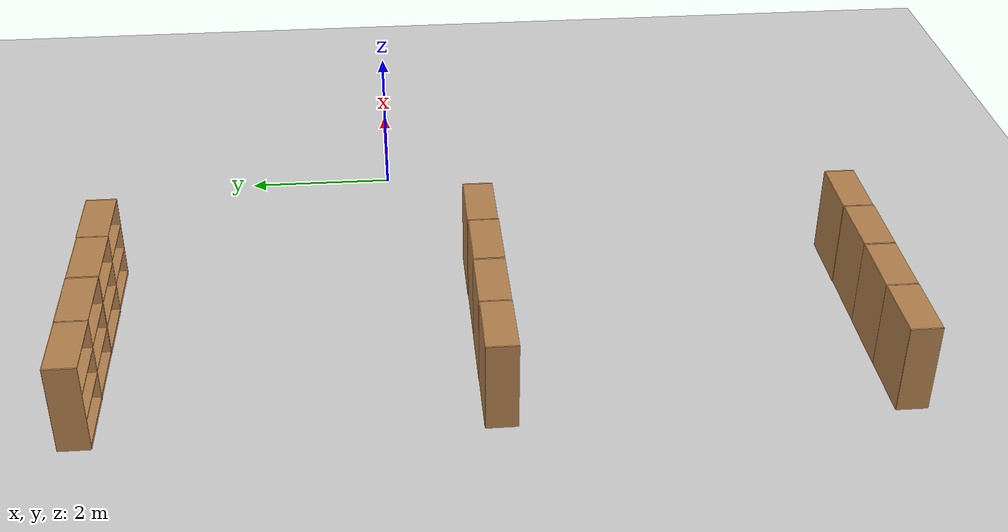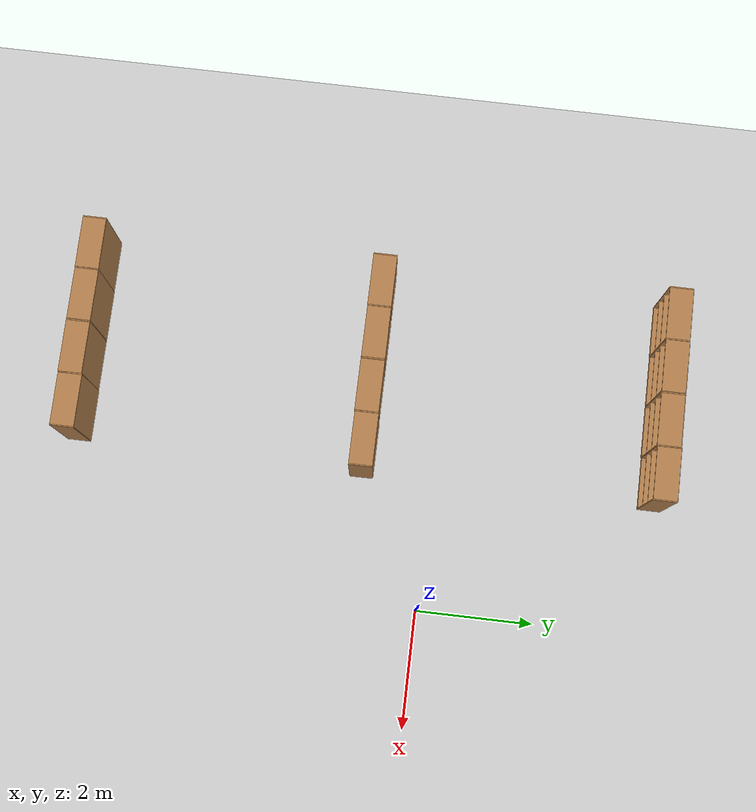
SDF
<sdf version="1.6">
 <world name="default">
  <model name="ground_plane">
   <static>1</static>
   <link name="link">
    <collision name="collision">
     <geometry><plane><normal>0 0 1</normal><size>100 100</size></plane></geometry>
     <surface>
      <contact><collide_bitmask>65535</collide_bitmask></contact>
      <friction><ode><mu>100</mu><mu2>50</mu2></ode></friction>
     </surface>
    </collision>
    <visual name="visual">
     <cast_shadows>0</cast_shadows>
     <geometry><plane><normal>0 0 1</normal><size>100 100</size></plane></geometry>
     <material>
      <script><uri>file://media/materials/scripts/gazebo.material</uri><name>Gazebo/Grey</name></script>
     </material>
    </visual>
   </link>
  </model>
  <model name="shelf">
   <model name="bookshelf">
    <static>1</static>
    <link name="link">
     <inertial><mass>1</mass></inertial>
     <collision name="back">
      <pose>0 0.005 0.6 0 -0 0</pose>
      <geometry><box><size>0.9 0.01 1.2</size></box></geometry>
     </collision>
     <visual name="visual1">
      <pose>0 0.005 0.6 0 -0 0</pose>
      <geometry><box><size>0.9 0.01 1.2</size></box></geometry>
      <material>
       <script><uri>file://media/materials/scripts/gazebo.material</uri><name>Gazebo/Wood</name></script>
      </material>
     </visual>
     <collision name="left_side">
      <pose>0.45 -0.195 0.6 0 -0 0</pose>
      <geometry><box><size>0.02 0.4 1.2</size></box></geometry>
     </collision>
     <visual name="visual2">
      <pose>0.45 -0.195 0.6 0 -0 0</pose>
      <geometry><box><size>0.02 0.4 1.2</size></box></geometry>
      <material>
       <script><uri>file://media/materials/scripts/gazebo.material</uri><name>Gazebo/Wood</name></script>
      </material>
     </visual>
     <collision name="right_side">
      <pose>-0.45 -0.195 0.6 0 -0 0</pose>
      <geometry><box><size>0.02 0.4 1.2</size></box></geometry>
     </collision>
     <visual name="visual3">
      <pose>-0.45 -0.195 0.6 0 -0 0</pose>
      <geometry><box><size>0.02 0.4 1.2</size></box></geometry>
      <material>
       <script><uri>file://media/materials/scripts/gazebo.material</uri><name>Gazebo/Wood</name></script>
      </material>
     </visual>
     <collision name="bottom">
      <pose>0 -0.195 0.03 0 -0 0</pose>
      <geometry><box><size>0.88 0.4 0.06</size></box></geometry>
     </collision>
     <visual name="visual4">
      <pose>0 -0.195 0.03 0 -0 0</pose>
      <geometry><box><size>0.88 0.4 0.06</size></box></geometry>
      <material>
       <script><uri>file://media/materials/scripts/gazebo.material</uri><name>Gazebo/Wood</name></script>
      </material>
     </visual>
     <collision name="top">
      <pose>0 -0.195 1.19 0 -0 0</pose>
      <geometry><box><size>0.88 0.4 0.02</size></box></geometry>
     </collision>
     <visual name="visual5">
      <pose>0 -0.195 1.19 0 -0 0</pose>
      <geometry><box><size>0.88 0.4 0.02</size></box></geometry>
      <material>
       <script><uri>file://media/materials/scripts/gazebo.material</uri><name>Gazebo/Wood</name></script>
      </material>
     </visual>
     <collision name="low_shelf">
      <pose>0 -0.195 0.43 0 -0 0</pose>
      <geometry><box><size>0.88 0.4 0.02</size></box></geometry>
     </collision>
     <visual name="visual6">
      <pose>0 -0.195 0.43 0 -0 0</pose>
      <geometry><box><size>0.88 0.4 0.02</size></box></geometry>
      <material>
       <script><uri>file://media/materials/scripts/gazebo.material</uri><name>Gazebo/Wood</name></script>
      </material>
     </visual>
     <collision name="high_shelf">
      <pose>0 -0.195 0.8 0 -0 0</pose>
      <geometry><box><size>0.88 0.4 0.02</size></box></geometry>
     </collision>
     <visual name="visual7">
      <pose>0 -0.195 0.8 0 -0 0</pose>
      <geometry><box><size>0.88 0.4 0.02</size></box></geometry>
      <material>
       <script><uri>file://media/materials/scripts/gazebo.material</uri><name>Gazebo/Wood</name></script>
      </material>
     </visual>
    </link>
    <pose>-1.36031 -0.003398 0 0 -0 0</pose>
   </model>
   <model name="bookshelf_clone">
    <static>1</static>
    <link name="link">
     <inertial><mass>1</mass></inertial>
     <collision name="back">
      <pose>0 0.005 0.6 0 -0 0</pose>
      <geometry><box><size>0.9 0.01 1.2</size></box></geometry>
     </collision>
     <visual name="visual1">
      <pose>0 0.005 0.6 0 -0 0</pose>
      <geometry><box><size>0.9 0.01 1.2</size></box></geometry>
      <material>
       <script><uri>file://media/materials/scripts/gazebo.material</uri><name>Gazebo/Wood</name></script>
      </material>
     </visual>
     <collision name="left_side">
      <pose>0.45 -0.195 0.6 0 -0 0</pose>
      <geometry><box><size>0.02 0.4 1.2</size></box></geometry>
     </collision>
     <visual name="visual2">
      <pose>0.45 -0.195 0.6 0 -0 0</pose>
      <geometry><box><size>0.02 0.4 1.2</size></box></geometry>
      <material>
       <script><uri>file://media/materials/scripts/gazebo.material</uri><name>Gazebo/Wood</name></script>
      </material>
     </visual>
     <collision name="right_side">
      <pose>-0.45 -0.195 0.6 0 -0 0</pose>
      <geometry><box><size>0.02 0.4 1.2</size></box></geometry>
     </collision>
     <visual name="visual3">
      <pose>-0.45 -0.195 0.6 0 -0 0</pose>
      <geometry><box><size>0.02 0.4 1.2</size></box></geometry>
      <material>
       <script><uri>file://media/materials/scripts/gazebo.material</uri><name>Gazebo/Wood</name></script>
      </material>
     </visual>
     <collision name="bottom">
      <pose>0 -0.195 0.03 0 -0 0</pose>
      <geometry><box><size>0.88 0.4 0.06</size></box></geometry>
     </collision>
     <visual name="visual4">
      <pose>0 -0.195 0.03 0 -0 0</pose>
      <geometry><box><size>0.88 0.4 0.06</size></box></geometry>
      <material>
       <script><uri>file://media/materials/scripts/gazebo.material</uri><name>Gazebo/Wood</name></script>
      </material>
     </visual>
     <collision name="top">
      <pose>0 -0.195 1.19 0 -0 0</pose>
      <geometry><box><size>0.88 0.4 0.02</size></box></geometry>
     </collision>
     <visual name="visual5">
      <pose>0 -0.195 1.19 0 -0 0</pose>
      <geometry><box><size>0.88 0.4 0.02</size></box></geometry>
      <material>
       <script><uri>file://media/materials/scripts/gazebo.material</uri><name>Gazebo/Wood</name></script>
      </material>
     </visual>
     <collision name="low_shelf">
      <pose>0 -0.195 0.43 0 -0 0</pose>
      <geometry><box><size>0.88 0.4 0.02</size></box></geometry>
     </collision>
     <visual name="visual6">
      <pose>0 -0.195 0.43 0 -0 0</pose>
      <geometry><box><size>0.88 0.4 0.02</size></box></geometry>
      <material>
       <script><uri>file://media/materials/scripts/gazebo.material</uri><name>Gazebo/Wood</name></script>
      </material>
     </visual>
     <collision name="high_shelf">
      <pose>0 -0.195 0.8 0 -0 0</pose>
      <geometry><box><size>0.88 0.4 0.02</size></box></geometry>
     </collision>
     <visual name="visual7">
      <pose>0 -0.195 0.8 0 -0 0</pose>
      <geometry><box><size>0.88 0.4 0.02</size></box></geometry>
      <material>
       <script><uri>file://media/materials/scripts/gazebo.material</uri><name>Gazebo/Wood</name></script>
      </material>
     </visual>
    </link>
    <pose>-0.456544 -0.000114 0 0 -0 0</pose>
   </model>
   <model name="bookshelf_clone_clone">
    <static>1</static>
    <link name="link">
     <inertial><mass>1</mass></inertial>
     <collision name="back">
      <pose>0 0.005 0.6 0 -0 0</pose>
      <geometry><box><size>0.9 0.01 1.2</size></box></geometry>
     </collision>
     <visual name="visual1">
      <pose>0 0.005 0.6 0 -0 0</pose>
      <geometry><box><size>0.9 0.01 1.2</size></box></geometry>
      <material>
       <script><uri>file://media/materials/scripts/gazebo.material</uri><name>Gazebo/Wood</name></script>
      </material>
     </visual>
     <collision name="left_side">
      <pose>0.45 -0.195 0.6 0 -0 0</pose>
      <geometry><box><size>0.02 0.4 1.2</size></box></geometry>
     </collision>
     <visual name="visual2">
      <pose>0.45 -0.195 0.6 0 -0 0</pose>
      <geometry><box><size>0.02 0.4 1.2</size></box></geometry>
      <material>
       <script><uri>file://media/materials/scripts/gazebo.material</uri><name>Gazebo/Wood</name></script>
      </material>
     </visual>
     <collision name="right_side">
      <pose>-0.45 -0.195 0.6 0 -0 0</pose>
      <geometry><box><size>0.02 0.4 1.2</size></box></geometry>
     </collision>
     <visual name="visual3">
      <pose>-0.45 -0.195 0.6 0 -0 0</pose>
      <geometry><box><size>0.02 0.4 1.2</size></box></geometry>
      <material>
       <script><uri>file://media/materials/scripts/gazebo.material</uri><name>Gazebo/Wood</name></script>
      </material>
     </visual>
     <collision name="bottom">
      <pose>0 -0.195 0.03 0 -0 0</pose>
      <geometry><box><size>0.88 0.4 0.06</size></box></geometry>
     </collision>
     <visual name="visual4">
      <pose>0 -0.195 0.03 0 -0 0</pose>
      <geometry><box><size>0.88 0.4 0.06</size></box></geometry>
      <material>
       <script><uri>file://media/materials/scripts/gazebo.material</uri><name>Gazebo/Wood</name></script>
      </material>
     </visual>
     <collision name="top">
      <pose>0 -0.195 1.19 0 -0 0</pose>
      <geometry><box><size>0.88 0.4 0.02</size></box></geometry>
     </collision>
     <visual name="visual5">
      <pose>0 -0.195 1.19 0 -0 0</pose>
      <geometry><box><size>0.88 0.4 0.02</size></box></geometry>
      <material>
       <script><uri>file://media/materials/scripts/gazebo.material</uri><name>Gazebo/Wood</name></script>
      </material>
     </visual>
     <collision name="low_shelf">
      <pose>0 -0.195 0.43 0 -0 0</pose>
      <geometry><box><size>0.88 0.4 0.02</size></box></geometry>
     </collision>
     <visual name="visual6">
      <pose>0 -0.195 0.43 0 -0 0</pose>
      <geometry><box><size>0.88 0.4 0.02</size></box></geometry>
      <material>
       <script><uri>file://media/materials/scripts/gazebo.material</uri><name>Gazebo/Wood</name></script>
      </material>
     </visual>
     <collision name="high_shelf">
      <pose>0 -0.195 0.8 0 -0 0</pose>
      <geometry><box><size>0.88 0.4 0.02</size></box></geometry>
     </collision>
     <visual name="visual7">
      <pose>0 -0.195 0.8 0 -0 0</pose>
      <geometry><box><size>0.88 0.4 0.02</size></box></geometry>
      <material>
       <script><uri>file://media/materials/scripts/gazebo.material</uri><name>Gazebo/Wood</name></script>
      </material>
     </visual>
    </link>
    <pose>0.456143 -0.001997 0 0 -0 0</pose>
   </model>
   <model name="bookshelf_clone_clone_0">
    <static>1</static>
    <link name="link">
     <inertial><mass>1</mass></inertial>
     <collision name="back">
      <pose>0 0.005 0.6 0 -0 0</pose>
      <geometry><box><size>0.9 0.01 1.2</size></box></geometry>
     </collision>
     <visual name="visual1">
      <pose>0 0.005 0.6 0 -0 0</pose>
      <geometry><box><size>0.9 0.01 1.2</size></box></geometry>
      <material>
       <script><uri>file://media/materials/scripts/gazebo.material</uri><name>Gazebo/Wood</name></script>
      </material>
     </visual>
     <collision name="left_side">
      <pose>0.45 -0.195 0.6 0 -0 0</pose>
      <geometry><box><size>0.02 0.4 1.2</size></box></geometry>
     </collision>
     <visual name="visual2">
      <pose>0.45 -0.195 0.6 0 -0 0</pose>
      <geometry><box><size>0.02 0.4 1.2</size></box></geometry>
      <material>
       <script><uri>file://media/materials/scripts/gazebo.material</uri><name>Gazebo/Wood</name></script>
      </material>
     </visual>
     <collision name="right_side">
      <pose>-0.45 -0.195 0.6 0 -0 0</pose>
      <geometry><box><size>0.02 0.4 1.2</size></box></geometry>
     </collision>
     <visual name="visual3">
      <pose>-0.45 -0.195 0.6 0 -0 0</pose>
      <geometry><box><size>0.02 0.4 1.2</size></box></geometry>
      <material>
       <script><uri>file://media/materials/scripts/gazebo.material</uri><name>Gazebo/Wood</name></script>
      </material>
     </visual>
     <collision name="bottom">
      <pose>0 -0.195 0.03 0 -0 0</pose>
      <geometry><box><size>0.88 0.4 0.06</size></box></geometry>
     </collision>
     <visual name="visual4">
      <pose>0 -0.195 0.03 0 -0 0</pose>
      <geometry><box><size>0.88 0.4 0.06</size></box></geometry>
      <material>
       <script><uri>file://media/materials/scripts/gazebo.material</uri><name>Gazebo/Wood</name></script>
      </material>
     </visual>
     <collision name="top">
      <pose>0 -0.195 1.19 0 -0 0</pose>
      <geometry><box><size>0.88 0.4 0.02</size></box></geometry>
     </collision>
     <visual name="visual5">
      <pose>0 -0.195 1.19 0 -0 0</pose>
      <geometry><box><size>0.88 0.4 0.02</size></box></geometry>
      <material>
       <script><uri>file://media/materials/scripts/gazebo.material</uri><name>Gazebo/Wood</name></script>
      </material>
     </visual>
     <collision name="low_shelf">
      <pose>0 -0.195 0.43 0 -0 0</pose>
      <geometry><box><size>0.88 0.4 0.02</size></box></geometry>
     </collision>
     <visual name="visual6">
      <pose>0 -0.195 0.43 0 -0 0</pose>
      <geometry><box><size>0.88 0.4 0.02</size></box></geometry>
      <material>
       <script><uri>file://media/materials/scripts/gazebo.material</uri><name>Gazebo/Wood</name></script>
      </material>
     </visual>
     <collision name="high_shelf">
      <pose>0 -0.195 0.8 0 -0 0</pose>
      <geometry><box><size>0.88 0.4 0.02</size></box></geometry>
     </collision>
     <visual name="visual7">
      <pose>0 -0.195 0.8 0 -0 0</pose>
      <geometry><box><size>0.88 0.4 0.02</size></box></geometry>
      <material>
       <script><uri>file://media/materials/scripts/gazebo.material</uri><name>Gazebo/Wood</name></script>
      </material>
     </visual>
    </link>
    <pose>1.3607 0.005513 0 0 -0 0</pose>
   </model>
   <static>0</static>
   <pose>-4.07417 -5.95913 0 0 -0 0</pose>
  </model>
  <model name="shelf_clone">
   <model name="bookshelf">
    <static>1</static>
    <link name="link">
     <inertial><mass>1</mass></inertial>
     <collision name="back">
      <pose>0 0.005 0.6 0 -0 0</pose>
      <geometry><box><size>0.9 0.01 1.2</size></box></geometry>
     </collision>
     <visual name="visual1">
      <pose>0 0.005 0.6 0 -0 0</pose>
      <geometry><box><size>0.9 0.01 1.2</size></box></geometry>
      <material>
       <script><uri>file://media/materials/scripts/gazebo.material</uri><name>Gazebo/Wood</name></script>
      </material>
     </visual>
     <collision name="left_side">
      <pose>0.45 -0.195 0.6 0 -0 0</pose>
      <geometry><box><size>0.02 0.4 1.2</size></box></geometry>
     </collision>
     <visual name="visual2">
      <pose>0.45 -0.195 0.6 0 -0 0</pose>
      <geometry><box><size>0.02 0.4 1.2</size></box></geometry>
      <material>
       <script><uri>file://media/materials/scripts/gazebo.material</uri><name>Gazebo/Wood</name></script>
      </material>
     </visual>
     <collision name="right_side">
      <pose>-0.45 -0.195 0.6 0 -0 0</pose>
      <geometry><box><size>0.02 0.4 1.2</size></box></geometry>
     </collision>
     <visual name="visual3">
      <pose>-0.45 -0.195 0.6 0 -0 0</pose>
      <geometry><box><size>0.02 0.4 1.2</size></box></geometry>
      <material>
       <script><uri>file://media/materials/scripts/gazebo.material</uri><name>Gazebo/Wood</name></script>
      </material>
     </visual>
     <collision name="bottom">
      <pose>0 -0.195 0.03 0 -0 0</pose>
      <geometry><box><size>0.88 0.4 0.06</size></box></geometry>
     </collision>
     <visual name="visual4">
      <pose>0 -0.195 0.03 0 -0 0</pose>
      <geometry><box><size>0.88 0.4 0.06</size></box></geometry>
      <material>
       <script><uri>file://media/materials/scripts/gazebo.material</uri><name>Gazebo/Wood</name></script>
      </material>
     </visual>
     <collision name="top">
      <pose>0 -0.195 1.19 0 -0 0</pose>
      <geometry><box><size>0.88 0.4 0.02</size></box></geometry>
     </collision>
     <visual name="visual5">
      <pose>0 -0.195 1.19 0 -0 0</pose>
      <geometry><box><size>0.88 0.4 0.02</size></box></geometry>
      <material>
       <script><uri>file://media/materials/scripts/gazebo.material</uri><name>Gazebo/Wood</name></script>
      </material>
     </visual>
     <collision name="low_shelf">
      <pose>0 -0.195 0.43 0 -0 0</pose>
      <geometry><box><size>0.88 0.4 0.02</size></box></geometry>
     </collision>
     <visual name="visual6">
      <pose>0 -0.195 0.43 0 -0 0</pose>
      <geometry><box><size>0.88 0.4 0.02</size></box></geometry>
      <material>
       <script><uri>file://media/materials/scripts/gazebo.material</uri><name>Gazebo/Wood</name></script>
      </material>
     </visual>
     <collision name="high_shelf">
      <pose>0 -0.195 0.8 0 -0 0</pose>
      <geometry><box><size>0.88 0.4 0.02</size></box></geometry>
     </collision>
     <visual name="visual7">
      <pose>0 -0.195 0.8 0 -0 0</pose>
      <geometry><box><size>0.88 0.4 0.02</size></box></geometry>
      <material>
       <script><uri>file://media/materials/scripts/gazebo.material</uri><name>Gazebo/Wood</name></script>
      </material>
     </visual>
    </link>
    <pose>-1.36031 -0.003398 0 0 -0 0</pose>
   </model>
   <model name="bookshelf_clone">
    <static>1</static>
    <link name="link">
     <inertial><mass>1</mass></inertial>
     <collision name="back">
      <pose>0 0.005 0.6 0 -0 0</pose>
      <geometry><box><size>0.9 0.01 1.2</size></box></geometry>
     </collision>
     <visual name="visual1">
      <pose>0 0.005 0.6 0 -0 0</pose>
      <geometry><box><size>0.9 0.01 1.2</size></box></geometry>
      <material>
       <script><uri>file://media/materials/scripts/gazebo.material</uri><name>Gazebo/Wood</name></script>
      </material>
     </visual>
     <collision name="left_side">
      <pose>0.45 -0.195 0.6 0 -0 0</pose>
      <geometry><box><size>0.02 0.4 1.2</size></box></geometry>
     </collision>
     <visual name="visual2">
      <pose>0.45 -0.195 0.6 0 -0 0</pose>
      <geometry><box><size>0.02 0.4 1.2</size></box></geometry>
      <material>
       <script><uri>file://media/materials/scripts/gazebo.material</uri><name>Gazebo/Wood</name></script>
      </material>
     </visual>
     <collision name="right_side">
      <pose>-0.45 -0.195 0.6 0 -0 0</pose>
      <geometry><box><size>0.02 0.4 1.2</size></box></geometry>
     </collision>
     <visual name="visual3">
      <pose>-0.45 -0.195 0.6 0 -0 0</pose>
      <geometry><box><size>0.02 0.4 1.2</size></box></geometry>
      <material>
       <script><uri>file://media/materials/scripts/gazebo.material</uri><name>Gazebo/Wood</name></script>
      </material>
     </visual>
     <collision name="bottom">
      <pose>0 -0.195 0.03 0 -0 0</pose>
      <geometry><box><size>0.88 0.4 0.06</size></box></geometry>
     </collision>
     <visual name="visual4">
      <pose>0 -0.195 0.03 0 -0 0</pose>
      <geometry><box><size>0.88 0.4 0.06</size></box></geometry>
      <material>
       <script><uri>file://media/materials/scripts/gazebo.material</uri><name>Gazebo/Wood</name></script>
      </material>
     </visual>
     <collision name="top">
      <pose>0 -0.195 1.19 0 -0 0</pose>
      <geometry><box><size>0.88 0.4 0.02</size></box></geometry>
     </collision>
     <visual name="visual5">
      <pose>0 -0.195 1.19 0 -0 0</pose>
      <geometry><box><size>0.88 0.4 0.02</size></box></geometry>
      <material>
       <script><uri>file://media/materials/scripts/gazebo.material</uri><name>Gazebo/Wood</name></script>
      </material>
     </visual>
     <collision name="low_shelf">
      <pose>0 -0.195 0.43 0 -0 0</pose>
      <geometry><box><size>0.88 0.4 0.02</size></box></geometry>
     </collision>
     <visual name="visual6">
      <pose>0 -0.195 0.43 0 -0 0</pose>
      <geometry><box><size>0.88 0.4 0.02</size></box></geometry>
      <material>
       <script><uri>file://media/materials/scripts/gazebo.material</uri><name>Gazebo/Wood</name></script>
      </material>
     </visual>
     <collision name="high_shelf">
      <pose>0 -0.195 0.8 0 -0 0</pose>
      <geometry><box><size>0.88 0.4 0.02</size></box></geometry>
     </collision>
     <visual name="visual7">
      <pose>0 -0.195 0.8 0 -0 0</pose>
      <geometry><box><size>0.88 0.4 0.02</size></box></geometry>
      <material>
       <script><uri>file://media/materials/scripts/gazebo.material</uri><name>Gazebo/Wood</name></script>
      </material>
     </visual>
    </link>
    <pose>-0.456544 -0.000114 0 0 -0 0</pose>
   </model>
   <model name="bookshelf_clone_clone">
    <static>1</static>
    <link name="link">
     <inertial><mass>1</mass></inertial>
     <collision name="back">
      <pose>0 0.005 0.6 0 -0 0</pose>
      <geometry><box><size>0.9 0.01 1.2</size></box></geometry>
     </collision>
     <visual name="visual1">
      <pose>0 0.005 0.6 0 -0 0</pose>
      <geometry><box><size>0.9 0.01 1.2</size></box></geometry>
      <material>
       <script><uri>file://media/materials/scripts/gazebo.material</uri><name>Gazebo/Wood</name></script>
      </material>
     </visual>
     <collision name="left_side">
      <pose>0.45 -0.195 0.6 0 -0 0</pose>
      <geometry><box><size>0.02 0.4 1.2</size></box></geometry>
     </collision>
     <visual name="visual2">
      <pose>0.45 -0.195 0.6 0 -0 0</pose>
      <geometry><box><size>0.02 0.4 1.2</size></box></geometry>
      <material>
       <script><uri>file://media/materials/scripts/gazebo.material</uri><name>Gazebo/Wood</name></script>
      </material>
     </visual>
     <collision name="right_side">
      <pose>-0.45 -0.195 0.6 0 -0 0</pose>
      <geometry><box><size>0.02 0.4 1.2</size></box></geometry>
     </collision>
     <visual name="visual3">
      <pose>-0.45 -0.195 0.6 0 -0 0</pose>
      <geometry><box><size>0.02 0.4 1.2</size></box></geometry>
      <material>
       <script><uri>file://media/materials/scripts/gazebo.material</uri><name>Gazebo/Wood</name></script>
      </material>
     </visual>
     <collision name="bottom">
      <pose>0 -0.195 0.03 0 -0 0</pose>
      <geometry><box><size>0.88 0.4 0.06</size></box></geometry>
     </collision>
     <visual name="visual4">
      <pose>0 -0.195 0.03 0 -0 0</pose>
      <geometry><box><size>0.88 0.4 0.06</size></box></geometry>
      <material>
       <script><uri>file://media/materials/scripts/gazebo.material</uri><name>Gazebo/Wood</name></script>
      </material>
     </visual>
     <collision name="top">
      <pose>0 -0.195 1.19 0 -0 0</pose>
      <geometry><box><size>0.88 0.4 0.02</size></box></geometry>
     </collision>
     <visual name="visual5">
      <pose>0 -0.195 1.19 0 -0 0</pose>
      <geometry><box><size>0.88 0.4 0.02</size></box></geometry>
      <material>
       <script><uri>file://media/materials/scripts/gazebo.material</uri><name>Gazebo/Wood</name></script>
      </material>
     </visual>
     <collision name="low_shelf">
      <pose>0 -0.195 0.43 0 -0 0</pose>
      <geometry><box><size>0.88 0.4 0.02</size></box></geometry>
     </collision>
     <visual name="visual6">
      <pose>0 -0.195 0.43 0 -0 0</pose>
      <geometry><box><size>0.88 0.4 0.02</size></box></geometry>
      <material>
       <script><uri>file://media/materials/scripts/gazebo.material</uri><name>Gazebo/Wood</name></script>
      </material>
     </visual>
     <collision name="high_shelf">
      <pose>0 -0.195 0.8 0 -0 0</pose>
      <geometry><box><size>0.88 0.4 0.02</size></box></geometry>
     </collision>
     <visual name="visual7">
      <pose>0 -0.195 0.8 0 -0 0</pose>
      <geometry><box><size>0.88 0.4 0.02</size></box></geometry>
      <material>
       <script><uri>file://media/materials/scripts/gazebo.material</uri><name>Gazebo/Wood</name></script>
      </material>
     </visual>
    </link>
    <pose>0.456143 -0.001997 0 0 -0 0</pose>
   </model>
   <model name="bookshelf_clone_clone_0">
    <static>1</static>
    <link name="link">
     <inertial><mass>1</mass></inertial>
     <collision name="back">
      <pose>0 0.005 0.6 0 -0 0</pose>
      <geometry><box><size>0.9 0.01 1.2</size></box></geometry>
     </collision>
     <visual name="visual1">
      <pose>0 0.005 0.6 0 -0 0</pose>
      <geometry><box><size>0.9 0.01 1.2</size></box></geometry>
      <material>
       <script><uri>file://media/materials/scripts/gazebo.material</uri><name>Gazebo/Wood</name></script>
      </material>
     </visual>
     <collision name="left_side">
      <pose>0.45 -0.195 0.6 0 -0 0</pose>
      <geometry><box><size>0.02 0.4 1.2</size></box></geometry>
     </collision>
     <visual name="visual2">
      <pose>0.45 -0.195 0.6 0 -0 0</pose>
      <geometry><box><size>0.02 0.4 1.2</size></box></geometry>
      <material>
       <script><uri>file://media/materials/scripts/gazebo.material</uri><name>Gazebo/Wood</name></script>
      </material>
     </visual>
     <collision name="right_side">
      <pose>-0.45 -0.195 0.6 0 -0 0</pose>
      <geometry><box><size>0.02 0.4 1.2</size></box></geometry>
     </collision>
     <visual name="visual3">
      <pose>-0.45 -0.195 0.6 0 -0 0</pose>
      <geometry><box><size>0.02 0.4 1.2</size></box></geometry>
      <material>
       <script><uri>file://media/materials/scripts/gazebo.material</uri><name>Gazebo/Wood</name></script>
      </material>
     </visual>
     <collision name="bottom">
      <pose>0 -0.195 0.03 0 -0 0</pose>
      <geometry><box><size>0.88 0.4 0.06</size></box></geometry>
     </collision>
     <visual name="visual4">
      <pose>0 -0.195 0.03 0 -0 0</pose>
      <geometry><box><size>0.88 0.4 0.06</size></box></geometry>
      <material>
       <script><uri>file://media/materials/scripts/gazebo.material</uri><name>Gazebo/Wood</name></script>
      </material>
     </visual>
     <collision name="top">
      <pose>0 -0.195 1.19 0 -0 0</pose>
      <geometry><box><size>0.88 0.4 0.02</size></box></geometry>
     </collision>
     <visual name="visual5">
      <pose>0 -0.195 1.19 0 -0 0</pose>
      <geometry><box><size>0.88 0.4 0.02</size></box></geometry>
      <material>
       <script><uri>file://media/materials/scripts/gazebo.material</uri><name>Gazebo/Wood</name></script>
      </material>
     </visual>
     <collision name="low_shelf">
      <pose>0 -0.195 0.43 0 -0 0</pose>
      <geometry><box><size>0.88 0.4 0.02</size></box></geometry>
     </collision>
     <visual name="visual6">
      <pose>0 -0.195 0.43 0 -0 0</pose>
      <geometry><box><size>0.88 0.4 0.02</size></box></geometry>
      <material>
       <script><uri>file://media/materials/scripts/gazebo.material</uri><name>Gazebo/Wood</name></script>
      </material>
     </visual>
     <collision name="high_shelf">
      <pose>0 -0.195 0.8 0 -0 0</pose>
      <geometry><box><size>0.88 0.4 0.02</size></box></geometry>
     </collision>
     <visual name="visual7">
      <pose>0 -0.195 0.8 0 -0 0</pose>
      <geometry><box><size>0.88 0.4 0.02</size></box></geometry>
      <material>
       <script><uri>file://media/materials/scripts/gazebo.material</uri><name>Gazebo/Wood</name></script>
      </material>
     </visual>
    </link>
    <pose>1.3607 0.005513 0 0 -0 0</pose>
   </model>
   <static>0</static>
   <pose>-4 -1 0 0 -0 0</pose>
  </model>
  <model name="shelf_clone_clone">
   <model name="bookshelf">
    <static>1</static>
    <link name="link">
     <inertial><mass>1</mass></inertial>
     <collision name="back">
      <pose>0 0.005 0.6 0 -0 0</pose>
      <geometry><box><size>0.9 0.01 1.2</size></box></geometry>
     </collision>
     <visual name="visual1">
      <pose>0 0.005 0.6 0 -0 0</pose>
      <geometry><box><size>0.9 0.01 1.2</size></box></geometry>
      <material>
       <script><uri>file://media/materials/scripts/gazebo.material</uri><name>Gazebo/Wood</name></script>
      </material>
     </visual>
     <collision name="left_side">
      <pose>0.45 -0.195 0.6 0 -0 0</pose>
      <geometry><box><size>0.02 0.4 1.2</size></box></geometry>
     </collision>
     <visual name="visual2">
      <pose>0.45 -0.195 0.6 0 -0 0</pose>
      <geometry><box><size>0.02 0.4 1.2</size></box></geometry>
      <material>
       <script><uri>file://media/materials/scripts/gazebo.material</uri><name>Gazebo/Wood</name></script>
      </material>
     </visual>
     <collision name="right_side">
      <pose>-0.45 -0.195 0.6 0 -0 0</pose>
      <geometry><box><size>0.02 0.4 1.2</size></box></geometry>
     </collision>
     <visual name="visual3">
      <pose>-0.45 -0.195 0.6 0 -0 0</pose>
      <geometry><box><size>0.02 0.4 1.2</size></box></geometry>
      <material>
       <script><uri>file://media/materials/scripts/gazebo.material</uri><name>Gazebo/Wood</name></script>
      </material>
     </visual>
     <collision name="bottom">
      <pose>0 -0.195 0.03 0 -0 0</pose>
      <geometry><box><size>0.88 0.4 0.06</size></box></geometry>
     </collision>
     <visual name="visual4">
      <pose>0 -0.195 0.03 0 -0 0</pose>
      <geometry><box><size>0.88 0.4 0.06</size></box></geometry>
      <material>
       <script><uri>file://media/materials/scripts/gazebo.material</uri><name>Gazebo/Wood</name></script>
      </material>
     </visual>
     <collision name="top">
      <pose>0 -0.195 1.19 0 -0 0</pose>
      <geometry><box><size>0.88 0.4 0.02</size></box></geometry>
     </collision>
     <visual name="visual5">
      <pose>0 -0.195 1.19 0 -0 0</pose>
      <geometry><box><size>0.88 0.4 0.02</size></box></geometry>
      <material>
       <script><uri>file://media/materials/scripts/gazebo.material</uri><name>Gazebo/Wood</name></script>
      </material>
     </visual>
     <collision name="low_shelf">
      <pose>0 -0.195 0.43 0 -0 0</pose>
      <geometry><box><size>0.88 0.4 0.02</size></box></geometry>
     </collision>
     <visual name="visual6">
      <pose>0 -0.195 0.43 0 -0 0</pose>
      <geometry><box><size>0.88 0.4 0.02</size></box></geometry>
      <material>
       <script><uri>file://media/materials/scripts/gazebo.material</uri><name>Gazebo/Wood</name></script>
      </material>
     </visual>
     <collision name="high_shelf">
      <pose>0 -0.195 0.8 0 -0 0</pose>
      <geometry><box><size>0.88 0.4 0.02</size></box></geometry>
     </collision>
     <visual name="visual7">
      <pose>0 -0.195 0.8 0 -0 0</pose>
      <geometry><box><size>0.88 0.4 0.02</size></box></geometry>
      <material>
       <script><uri>file://media/materials/scripts/gazebo.material</uri><name>Gazebo/Wood</name></script>
      </material>
     </visual>
    </link>
    <pose>-1.36031 -0.003398 0 0 -0 0</pose>
   </model>
   <model name="bookshelf_clone">
    <static>1</static>
    <link name="link">
     <inertial><mass>1</mass></inertial>
     <collision name="back">
      <pose>0 0.005 0.6 0 -0 0</pose>
      <geometry><box><size>0.9 0.01 1.2</size></box></geometry>
     </collision>
     <visual name="visual1">
      <pose>0 0.005 0.6 0 -0 0</pose>
      <geometry><box><size>0.9 0.01 1.2</size></box></geometry>
      <material>
       <script><uri>file://media/materials/scripts/gazebo.material</uri><name>Gazebo/Wood</name></script>
      </material>
     </visual>
     <collision name="left_side">
      <pose>0.45 -0.195 0.6 0 -0 0</pose>
      <geometry><box><size>0.02 0.4 1.2</size></box></geometry>
     </collision>
     <visual name="visual2">
      <pose>0.45 -0.195 0.6 0 -0 0</pose>
      <geometry><box><size>0.02 0.4 1.2</size></box></geometry>
      <material>
       <script><uri>file://media/materials/scripts/gazebo.material</uri><name>Gazebo/Wood</name></script>
      </material>
     </visual>
     <collision name="right_side">
      <pose>-0.45 -0.195 0.6 0 -0 0</pose>
      <geometry><box><size>0.02 0.4 1.2</size></box></geometry>
     </collision>
     <visual name="visual3">
      <pose>-0.45 -0.195 0.6 0 -0 0</pose>
      <geometry><box><size>0.02 0.4 1.2</size></box></geometry>
      <material>
       <script><uri>file://media/materials/scripts/gazebo.material</uri><name>Gazebo/Wood</name></script>
      </material>
     </visual>
     <collision name="bottom">
      <pose>0 -0.195 0.03 0 -0 0</pose>
      <geometry><box><size>0.88 0.4 0.06</size></box></geometry>
     </collision>
     <visual name="visual4">
      <pose>0 -0.195 0.03 0 -0 0</pose>
      <geometry><box><size>0.88 0.4 0.06</size></box></geometry>
      <material>
       <script><uri>file://media/materials/scripts/gazebo.material</uri><name>Gazebo/Wood</name></script>
      </material>
     </visual>
     <collision name="top">
      <pose>0 -0.195 1.19 0 -0 0</pose>
      <geometry><box><size>0.88 0.4 0.02</size></box></geometry>
     </collision>
     <visual name="visual5">
      <pose>0 -0.195 1.19 0 -0 0</pose>
      <geometry><box><size>0.88 0.4 0.02</size></box></geometry>
      <material>
       <script><uri>file://media/materials/scripts/gazebo.material</uri><name>Gazebo/Wood</name></script>
      </material>
     </visual>
     <collision name="low_shelf">
      <pose>0 -0.195 0.43 0 -0 0</pose>
      <geometry><box><size>0.88 0.4 0.02</size></box></geometry>
     </collision>
     <visual name="visual6">
      <pose>0 -0.195 0.43 0 -0 0</pose>
      <geometry><box><size>0.88 0.4 0.02</size></box></geometry>
      <material>
       <script><uri>file://media/materials/scripts/gazebo.material</uri><name>Gazebo/Wood</name></script>
      </material>
     </visual>
     <collision name="high_shelf">
      <pose>0 -0.195 0.8 0 -0 0</pose>
      <geometry><box><size>0.88 0.4 0.02</size></box></geometry>
     </collision>
     <visual name="visual7">
      <pose>0 -0.195 0.8 0 -0 0</pose>
      <geometry><box><size>0.88 0.4 0.02</size></box></geometry>
      <material>
       <script><uri>file://media/materials/scripts/gazebo.material</uri><name>Gazebo/Wood</name></script>
      </material>
     </visual>
    </link>
    <pose>-0.456544 -0.000114 0 0 -0 0</pose>
   </model>
   <model name="bookshelf_clone_clone">
    <static>1</static>
    <link name="link">
     <inertial><mass>1</mass></inertial>
     <collision name="back">
      <pose>0 0.005 0.6 0 -0 0</pose>
      <geometry><box><size>0.9 0.01 1.2</size></box></geometry>
     </collision>
     <visual name="visual1">
      <pose>0 0.005 0.6 0 -0 0</pose>
      <geometry><box><size>0.9 0.01 1.2</size></box></geometry>
      <material>
       <script><uri>file://media/materials/scripts/gazebo.material</uri><name>Gazebo/Wood</name></script>
      </material>
     </visual>
     <collision name="left_side">
      <pose>0.45 -0.195 0.6 0 -0 0</pose>
      <geometry><box><size>0.02 0.4 1.2</size></box></geometry>
     </collision>
     <visual name="visual2">
      <pose>0.45 -0.195 0.6 0 -0 0</pose>
      <geometry><box><size>0.02 0.4 1.2</size></box></geometry>
      <material>
       <script><uri>file://media/materials/scripts/gazebo.material</uri><name>Gazebo/Wood</name></script>
      </material>
     </visual>
     <collision name="right_side">
      <pose>-0.45 -0.195 0.6 0 -0 0</pose>
      <geometry><box><size>0.02 0.4 1.2</size></box></geometry>
     </collision>
     <visual name="visual3">
      <pose>-0.45 -0.195 0.6 0 -0 0</pose>
      <geometry><box><size>0.02 0.4 1.2</size></box></geometry>
      <material>
       <script><uri>file://media/materials/scripts/gazebo.material</uri><name>Gazebo/Wood</name></script>
      </material>
     </visual>
     <collision name="bottom">
      <pose>0 -0.195 0.03 0 -0 0</pose>
      <geometry><box><size>0.88 0.4 0.06</size></box></geometry>
     </collision>
     <visual name="visual4">
      <pose>0 -0.195 0.03 0 -0 0</pose>
      <geometry><box><size>0.88 0.4 0.06</size></box></geometry>
      <material>
       <script><uri>file://media/materials/scripts/gazebo.material</uri><name>Gazebo/Wood</name></script>
      </material>
     </visual>
     <collision name="top">
      <pose>0 -0.195 1.19 0 -0 0</pose>
      <geometry><box><size>0.88 0.4 0.02</size></box></geometry>
     </collision>
     <visual name="visual5">
      <pose>0 -0.195 1.19 0 -0 0</pose>
      <geometry><box><size>0.88 0.4 0.02</size></box></geometry>
      <material>
       <script><uri>file://media/materials/scripts/gazebo.material</uri><name>Gazebo/Wood</name></script>
      </material>
     </visual>
     <collision name="low_shelf">
      <pose>0 -0.195 0.43 0 -0 0</pose>
      <geometry><box><size>0.88 0.4 0.02</size></box></geometry>
     </collision>
     <visual name="visual6">
      <pose>0 -0.195 0.43 0 -0 0</pose>
      <geometry><box><size>0.88 0.4 0.02</size></box></geometry>
      <material>
       <script><uri>file://media/materials/scripts/gazebo.material</uri><name>Gazebo/Wood</name></script>
      </material>
     </visual>
     <collision name="high_shelf">
      <pose>0 -0.195 0.8 0 -0 0</pose>
      <geometry><box><size>0.88 0.4 0.02</size></box></geometry>
     </collision>
     <visual name="visual7">
      <pose>0 -0.195 0.8 0 -0 0</pose>
      <geometry><box><size>0.88 0.4 0.02</size></box></geometry>
      <material>
       <script><uri>file://media/materials/scripts/gazebo.material</uri><name>Gazebo/Wood</name></script>
      </material>
     </visual>
    </link>
    <pose>0.456143 -0.001997 0 0 -0 0</pose>
   </model>
   <model name="bookshelf_clone_clone_0">
    <static>1</static>
    <link name="link">
     <inertial><mass>1</mass></inertial>
     <collision name="back">
      <pose>0 0.005 0.6 0 -0 0</pose>
      <geometry><box><size>0.9 0.01 1.2</size></box></geometry>
     </collision>
     <visual name="visual1">
      <pose>0 0.005 0.6 0 -0 0</pose>
      <geometry><box><size>0.9 0.01 1.2</size></box></geometry>
      <material>
       <script><uri>file://media/materials/scripts/gazebo.material</uri><name>Gazebo/Wood</name></script>
      </material>
     </visual>
     <collision name="left_side">
      <pose>0.45 -0.195 0.6 0 -0 0</pose>
      <geometry><box><size>0.02 0.4 1.2</size></box></geometry>
     </collision>
     <visual name="visual2">
      <pose>0.45 -0.195 0.6 0 -0 0</pose>
      <geometry><box><size>0.02 0.4 1.2</size></box></geometry>
      <material>
       <script><uri>file://media/materials/scripts/gazebo.material</uri><name>Gazebo/Wood</name></script>
      </material>
     </visual>
     <collision name="right_side">
      <pose>-0.45 -0.195 0.6 0 -0 0</pose>
      <geometry><box><size>0.02 0.4 1.2</size></box></geometry>
     </collision>
     <visual name="visual3">
      <pose>-0.45 -0.195 0.6 0 -0 0</pose>
      <geometry><box><size>0.02 0.4 1.2</size></box></geometry>
      <material>
       <script><uri>file://media/materials/scripts/gazebo.material</uri><name>Gazebo/Wood</name></script>
      </material>
     </visual>
     <collision name="bottom">
      <pose>0 -0.195 0.03 0 -0 0</pose>
      <geometry><box><size>0.88 0.4 0.06</size></box></geometry>
     </collision>
     <visual name="visual4">
      <pose>0 -0.195 0.03 0 -0 0</pose>
      <geometry><box><size>0.88 0.4 0.06</size></box></geometry>
      <material>
       <script><uri>file://media/materials/scripts/gazebo.material</uri><name>Gazebo/Wood</name></script>
      </material>
     </visual>
     <collision name="top">
      <pose>0 -0.195 1.19 0 -0 0</pose>
      <geometry><box><size>0.88 0.4 0.02</size></box></geometry>
     </collision>
     <visual name="visual5">
      <pose>0 -0.195 1.19 0 -0 0</pose>
      <geometry><box><size>0.88 0.4 0.02</size></box></geometry>
      <material>
       <script><uri>file://media/materials/scripts/gazebo.material</uri><name>Gazebo/Wood</name></script>
      </material>
     </visual>
     <collision name="low_shelf">
      <pose>0 -0.195 0.43 0 -0 0</pose>
      <geometry><box><size>0.88 0.4 0.02</size></box></geometry>
     </collision>
     <visual name="visual6">
      <pose>0 -0.195 0.43 0 -0 0</pose>
      <geometry><box><size>0.88 0.4 0.02</size></box></geometry>
      <material>
       <script><uri>file://media/materials/scripts/gazebo.material</uri><name>Gazebo/Wood</name></script>
      </material>
     </visual>
     <collision name="high_shelf">
      <pose>0 -0.195 0.8 0 -0 0</pose>
      <geometry><box><size>0.88 0.4 0.02</size></box></geometry>
     </collision>
     <visual name="visual7">
      <pose>0 -0.195 0.8 0 -0 0</pose>
      <geometry><box><size>0.88 0.4 0.02</size></box></geometry>
      <material>
       <script><uri>file://media/materials/scripts/gazebo.material</uri><name>Gazebo/Wood</name></script>
      </material>
     </visual>
    </link>
    <pose>1.3607 0.005513 0 0 -0 0</pose>
   </model>
   <static>0</static>
   <pose>-4 4 0 0 -0 0</pose>
  </model>
 </world>
</sdf>
